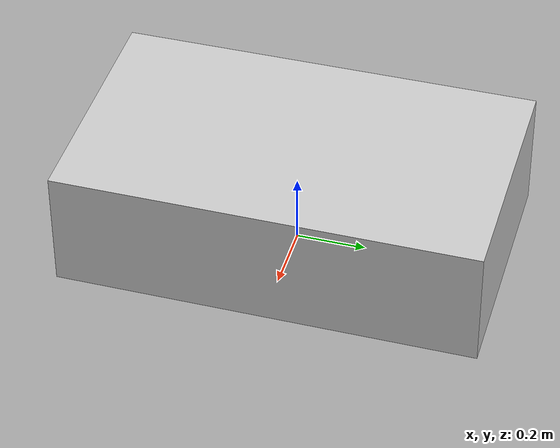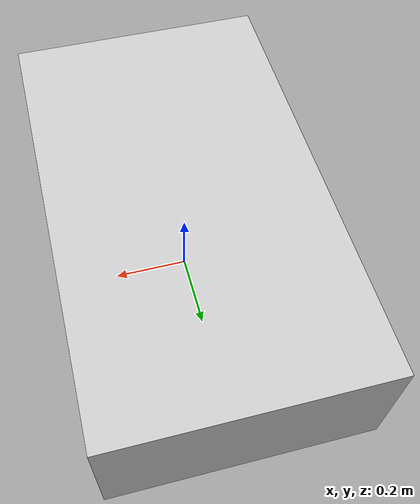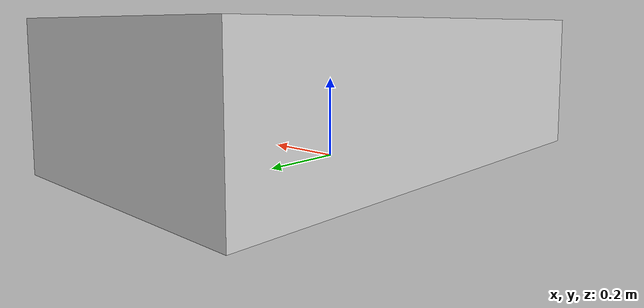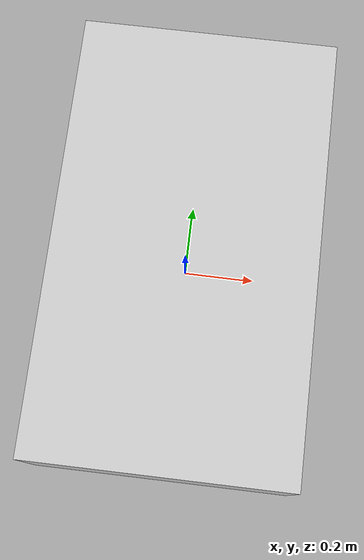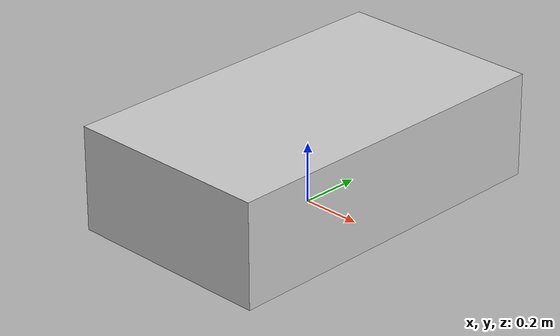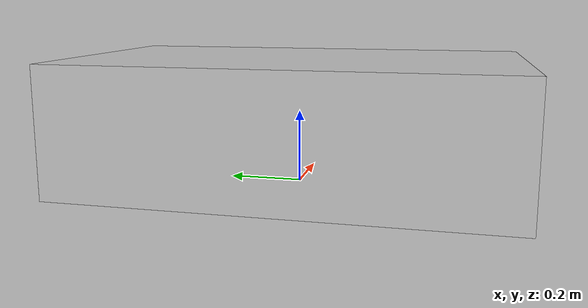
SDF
<?xml version="1.0"?>
<sdf version="1.6">
  <model name="rwc2013/couch_table">
    <link name="1_link">
      <collision name="1_col">
        <geometry>
          <box>
            <size>0.7 1.2 0.35</size>
          </box>
        </geometry>
      </collision>
      <visual name="1_vis">
        <geometry>
          <box>
            <size>0.7 1.2 0.35</size>
          </box>
        </geometry>
        <material>
          <ambient>0.8 0.8 0.8 1</ambient>
        </material>
      </visual>
      <pose>0.0 0.0 0.175 0 0 0</pose>
    </link>
    <static>true</static>
  </model>
</sdf>
